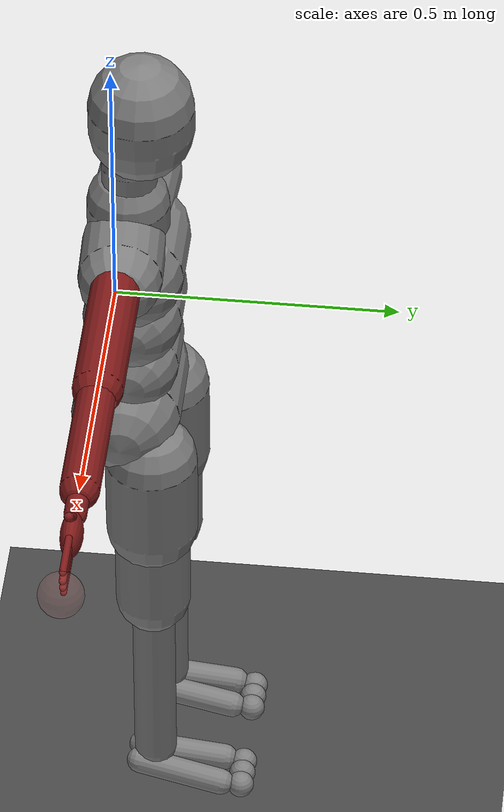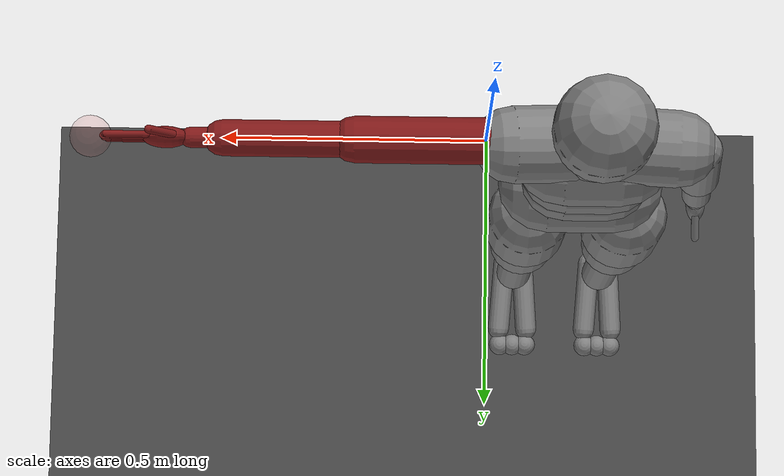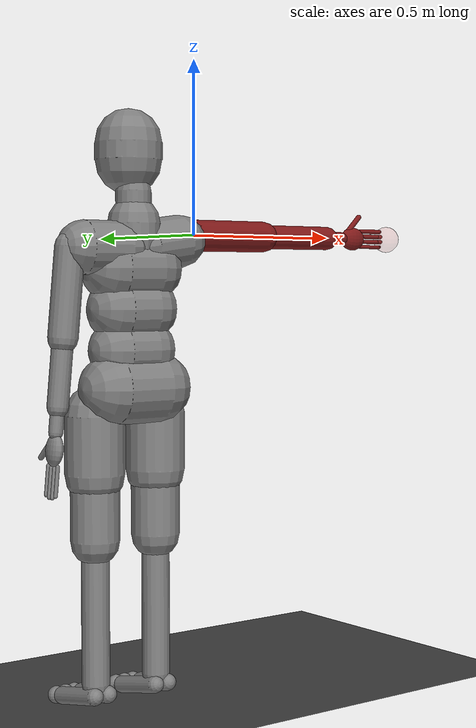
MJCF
<mujoco model="2-link arm joint torque control">
  <!-- Defining how equations of motions and constraints are solved -->
  <option timestep="0.005" iterations="50" solver="Newton" tolerance="1e-10"/>

  <default>
    <joint type="hinge" pos="0 0 0" axis="0 0 1" limited="true" range="-5 170" damping="0.1" stiffness="0" armature="0.001"/>
  </default>

  <!--
  This is where the physical elements will be defined.
  The worldbody is the root element, all other rigid bodies are its children.
  -->
  <worldbody>

    <!--
    This is a rigid body. It can have children bodies of its own nested inside.
    The child elements' position is defined in relation to this one's.
    -->
    <body name="upper arm" pos="0 0 0">

      <!--
      A "geom" defines a volume or surface that can't be penetrated by other geoms, and determines
      mass and inertia as well.
      -->
      <geom name="upper arm" mass="1" type="capsule" size="0.045" fromto="0 0 0  0.25 0 0" rgba=".5 .1 .1 1"/>

      <joint name="shoulder" range="-60 160"/>

      <body name="forearm" pos="0.25 0 0">
        <geom name="forearm" mass="2" type="capsule" size="0.035" fromto="0 0 0  0.25 0 0" rgba=".5 .1 .1 1"/>
        <joint name="elbow"/>
          <body  name="wrist_body" pos="0.25 0 0" euler="-90 0 90">
              <geom density="1000" type="capsule" size="0.02000001 0.03" pos="1.880135E-09 -0.03 -3.279598E-08" quat="4.003268E-08 -4.391836E-08 -0.7071071 -0.7071071" priority="0" contype="0" conaffinity="0" group="2" condim="1" solmix="1" solref="0.015 1" rgba=".5 .1 .1 1" solimp="0.99 0.99 0.003" margin="0" gap="0" friction="0.7 0.005 0.0001" name="rwrist" />
              <body pos="0 -0.09076759 0" quat="-1 0 0 0" name="hand">
                <!--
                TODO: Add a joint here! Experiment with which direction its axis="x y z" should point to
                -->
                <geom density="1000" type="ellipsoid" size="0.03500002 0.02000001 0.045" pos="3.469804E-09 -0.01675202 -3.877605E-08" quat="4.003268E-08 -4.391836E-08 -0.7071071 -0.7071071" priority="0" contype="0" conaffinity="0" group="2" rgba=".5 .1 .1 1" condim="3" solmix="1" solref="0.015 1" solimp="0.98 0.98 0.001" margin="0" gap="0" friction="1 0.005 0.0001" name="rhand" />
                <body name="tip" pos="0 -0.175 0"/>
                <body pos="-6.475558E-09 -0.06500006 1.90359E-08" quat="-1 0 0 0" name="rfingers">
                  <geom density="1000" type="capsule" size="0.006500002 0.04" pos="-0.02399999 -0.02500005 -4.555073E-08" quat="0.7071071 -0.7071071 4.391836E-08 4.003268E-08" priority="0" contype="0" conaffinity="0" group="2" condim="3" rgba=".5 .1 .1 1" solmix="1" solref="0.015 1" solimp="0.98 0.98 0.001" margin="0" gap="0" friction="1 0.005 0.0001" name="rfinger0" />
                  <geom density="1000" type="capsule" size="0.006500002 0.04" pos="-0.00799998 -0.02999995 -3.565628E-10" quat="0.7071071 -0.7071071 4.391836E-08 4.003268E-08" priority="0" contype="0" conaffinity="0" group="2" condim="3" rgba=".5 .1 .1 1" solmix="1" solref="0.015 1" solimp="0.98 0.98 0.001" margin="0" gap="0" friction="1 0.005 0.0001" name="rfinger1" />
                  <geom density="1000" type="capsule" size="0.006000001 0.04" pos="0.007999999 -0.03000007 -5.897357E-09" quat="0.7071071 -0.7071071 4.391836E-08 4.003268E-08" priority="0" contype="0" conaffinity="0" group="2" condim="3" rgba=".5 .1 .1 1" solmix="1" solref="0.015 1" solimp="0.98 0.98 0.001" margin="0" gap="0" friction="1 0.005 0.0001" name="rfinger2" />
                  <geom density="1000" type="capsule" size="0.005500001 0.04" pos="0.02400001 -0.02500007 3.095344E-08" quat="0.7071071 -0.7071071 4.391836E-08 4.003268E-08" priority="0" contype="0" conaffinity="0" group="2" condim="3" rgba=".5 .1 .1 1" solmix="1" solref="0.015 1" solimp="0.98 0.98 0.001" margin="0" gap="0" friction="1 0.005 0.0001" name="rfinger3" />
                </body>
                <body pos="-0.025 6.70552E-09 -8.940694E-09" quat="0.92388 -4.930634E-08 6.000214E-08 -0.382683" name="rthumb">
                  <geom density="1000" type="capsule" size="0.008000004 0.03" pos="2.888915E-08 -0.03000006 -2.920286E-08" quat="3.642271E-08 6.018672E-09 -0.707107 -0.707107" priority="0" contype="0" conaffinity="0" group="2" rgba=".5 .1 .1 1"  condim="3" solmix="1" solref="0.015 1" solimp="0.98 0.98 0.001" margin="0" gap="0" friction="1 0.005 0.0001" name="rthumb" />
                </body>
              </body>
          </body>

      </body>
    </body>

    <!-- These two elements are necessary for clearer visualisation of spatial relationships. -->
    <geom name="floor" pos="0 0 -1.35" size="0 0 1" type="plane" material="matplane"/>
    <light directional="true" diffuse=".8 .8 .8" specular=".2 .2 .2" pos="0 0 5" dir="0 0 -1"/>

    <body name="IK" mocap="true" pos="0.75 0 0">
        <geom type="sphere" size="0.04" contype="0" conaffinity="0" rgba="0.8 0.4 0.4 0.2"/>
    </body>
  </worldbody>

  <actuator>
    <motor name="data.ctrl[0]" joint="shoulder" ctrllimited="true" ctrlrange="-3 3" gear="0 0 0 0 0 0 "/>
    <motor name="data.ctrl[1]" joint="elbow" ctrllimited="true" ctrlrange="-3 3" gear="0 0 0 0 0 0 "/>
    <motor name="data.ctrl[2]" joint="shoulder" ctrllimited="true" ctrlrange="-3 3" gear="0 0 0 0 0 0 "/>
    <motor name="data.ctrl[3]" joint="elbow" ctrllimited="true" ctrlrange="-3 3" gear="0 0 0 0 0 0 "/>
    <!--
    TODO: Add an actuator for your new wrist joint
    -->
  </actuator>

  <!--
  Add humanoid model, for spatial reference.
  -->
  <include file="../xml/cmu_model.xml"/>

  <!--
  The elements below are for visuals only, defining textures and postprocessing.
  -->

  <equality>
    <connect body1="IK" body2="tip" anchor="0 0 0" active="false" name="target"/>
  </equality>

  <asset>
    <texture type="skybox" builtin="gradient" rgb1="0.6 0.6 0.6" rgb2="0 0 0" width="512" height="512"/>
    <texture name="texplane" type="2d" builtin="checker" rgb1=".25 .25 .25" rgb2=".3 .3 .3" width="512" height="512" mark="cross" markrgb=".8 .8 .8"/>
    <material name="matplane" reflectance="0.3" texture="texplane" texrepeat="1 1" texuniform="true"/>
  </asset>

  <visual>
    <rgba haze=".3 .3 .3 1"/>
  </visual>
</mujoco>

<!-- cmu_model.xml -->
<!--
This model is only used as a visual reference to illustrate a humanoid body in some of the xml files.
-->

<mujoco>
  <worldbody>
    <body pos="-0.2067787 -0.0002415101 0.1821983" quat="-8.659561E-17 0 0.7071068 0.7071068" mocap="true" name="Mocap_K_head_0" />
    <body pos="-0.208 -0.004 -0.3789999" quat="-8.659561E-17 0 0.7071068 0.7071068" mocap="true" name="Mocap_K_lowerback_1" />
    <body pos="0.5372286 0.00427828 0.00206387" quat="-0.7071068 -2.980232E-07 1.192093E-07 -0.7071068" mocap="true" name="Mocap_K_rhand_2" />
    <body pos="-0.2085659 -0.012053 -0.2657869" quat="-8.659561E-17 0 0.7071068 0.7071068" mocap="true" name="Mocap_K_upperback_3" />
    <body pos="-0.106063 0.04544622 -1.291445" quat="-6.123234E-17 6.123234E-17 0 1" mocap="true" name="Mocap_K_rfoot_4" />
    <body pos="-0.309937 0.04544622 -1.291445" quat="-6.123234E-17 6.123234E-17 0 1" mocap="true" name="Mocap_K_lfoot_5" />
    <body pos="-0.461662 0.004277938 -0.570159" quat="0.5230872 0.475794 -0.4757942 -0.5230867" mocap="true" name="Mocap_K_lhand_6" />
    <body pos="-0.2090784 -0.01111618 -0.1522268" quat="-8.659561E-17 0 0.7071068 0.7071068" mocap="true" name="Mocap_K_thorax_7" />
    <body pos="-0.208 -0.004 -0.3789999" quat="-1 0 0 0" mocap="true" name="Mocap_K_root_8" />
    <body pos="-0.208 -0.004 -0.379" quat="-1 0 0 0" name="K_root_9">
      <body pos="0 0 0" quat="0 0 0.7071068 0.7071068" name="K_lhipjoint_10">
        <geom density="10" type="capsule" size="0.008000004 0.02187361" pos="0.05096854 -0.04590372 0.02472301" quat="0.5708001 -0.5666021 -0.5942641 0" priority="0" contype="0" conaffinity="0" group="2" condim="1" solmix="1" solref="0.015 1" solimp="0.99 0.99 0.003" margin="0" gap="0" friction="0.7 0.005 0.0001" name="K_lhipjoint_15" />
        <body pos="0.1019371 -0.09180747 0.04944616" quat="-1 0 0 0" name="K_lfemur_16">

          <geom density="0" type="capsule" size="0.08500003 0.083" pos="0 -0.115473 3.61172E-08" quat="0.6963643 -0.6963643 -0.1227881 -0.1227881" priority="0" contype="0" conaffinity="0" group="2" condim="1" solmix="1" solref="0.015 1" solimp="0.99 0.99 0.003" margin="0" gap="0" friction="0.7 0.005 0.0001" name="K_lfemur_upper_23" />
          <geom density="1000" type="capsule" size="0.07000002 0.182226" pos="0 -0.202473 4.648841E-08" quat="0.6963643 -0.6963643 -0.1227881 -0.1227881" priority="0" contype="0" conaffinity="0" group="2" condim="1" solmix="1" solref="0.015 1" solimp="0.99 0.99 0.003" margin="0" gap="0" friction="0.7 0.005 0.0001" name="K_lfemur_24" />
          <body pos="0 -0.4049452 1.302296E-07" quat="-1 0 0 0" name="K_ltibia_25">

            <geom density="1000" type="capsule" size="0.04000001 0.182561" pos="0 -0.202846 2.418112E-08" quat="0.6963643 -0.6963643 -0.1227881 -0.1227881" priority="0" contype="0" conaffinity="0" group="2" condim="1" solmix="1" solref="0.015 1" solimp="0.99 0.99 0.003" margin="0" gap="0" friction="0.7 0.005 0.0001" name="K_ltibia_35" />
            <body pos="0 -0.415693 1.091591E-07" quat="0.7071069 -0.7071069 0 0" name="K_lfoot_36">

              <geom density="1000" type="capsule" size="0.02500003 0.08000004" pos="-0.02700002 -0.04999997 -0.01138783" quat="0.7672563 -0.6405111 0.02306491 -0.02306581" priority="0" contype="0" conaffinity="1" group="2" condim="3" solmix="1" solref="0.015 1" solimp="0.98 0.98 0.001" margin="0" gap="0" friction="1 0.005 0.0001" name="K_lfoot_47" />
              <geom density="1000" type="capsule" size="0.02500003 0.08000004" pos="0.02700002 -0.04999997 -0.01138783" quat="0.7288731 -0.5939951 -0.240743 -0.240743" priority="0" contype="0" conaffinity="1" group="2" condim="3" solmix="1" solref="0.015 1" solimp="0.98 0.98 0.001" margin="0" gap="0" friction="1 0.005 0.0001" name="K_lfoot_ch_48" />
              <body pos="0 -0.1563721 -0.02277565" quat="-1 0 0 0" name="K_ltoes_49">

                <geom density="1000" type="sphere" size="0.02500002" pos="0 -0.009999995 -0.00999999" quat="-1 0 0 0" priority="0" contype="0" conaffinity="1" group="2" condim="3" solmix="1" solref="0.015 1" solimp="0.98 0.98 0.001" margin="0" gap="0" friction="1 0.005 0.0001" name="K_ltoes0_67" />
                <geom density="1000" type="sphere" size="0.02500002" pos="0.03000002 -0.009999995 -0.00999999" quat="-1 0 0 0" priority="0" contype="0" conaffinity="1" group="2" condim="3" solmix="1" solref="0.015 1" solimp="0.98 0.98 0.001" margin="0" gap="0" friction="1 0.005 0.0001" name="K_ltoes1_68" />
                <geom density="1000" type="sphere" size="0.02500002" pos="-0.03000002 -0.009999995 -0.00999999" quat="-1 0 0 0" priority="0" contype="0" conaffinity="1" group="2" condim="3" solmix="1" solref="0.015 1" solimp="0.98 0.98 0.001" margin="0" gap="0" friction="1 0.005 0.0001" name="K_ltoes2_69" />
              </body>
            </body>
          </body>
        </body>
      </body>
      <body pos="0 0 0" quat="0 0 0.7071068 0.7071068" name="K_rhipjoint_11">
        <geom density="10" type="capsule" size="0.008000002 0.02187361" pos="-0.05096852 -0.04590372 0.02472301" quat="0.5748562 -0.5475942 0.6080142 0" priority="0" contype="0" conaffinity="0" group="2" condim="1" solmix="1" solref="0.015 1" solimp="0.99 0.99 0.003" margin="0" gap="0" friction="0.7 0.005 0.0001" name="K_rhipjoint_17" />
        <body pos="-0.1019371 -0.09180744 0.04944613" quat="-1 0 0 0" name="K_rfemur_18">

          <geom density="0" type="capsule" size="0.08500003 0.083" pos="0 -0.115473 3.61172E-08" quat="0.6963643 -0.6963643 0.1227881 0.1227881" priority="0" contype="0" conaffinity="0" group="2" condim="1" solmix="1" solref="0.015 1" solimp="0.99 0.99 0.003" margin="0" gap="0" friction="0.7 0.005 0.0001" name="K_rfemur_upper_27" />
          <geom density="1000" type="capsule" size="0.07000002 0.182226" pos="0 -0.2024731 4.648841E-08" quat="0.6963643 -0.6963643 0.1227881 0.1227881" priority="0" contype="0" conaffinity="0" group="2" condim="1" solmix="1" solref="0.015 1" solimp="0.99 0.99 0.003" margin="0" gap="0" friction="0.7 0.005 0.0001" name="K_rfemur_28" />
          <body pos="0 -0.4049451 1.004273E-07" quat="-1 0 0 0" name="K_rtibia_29">

            <geom density="1000" type="capsule" size="0.04000001 0.182561" pos="0 -0.2028461 2.418113E-08" quat="0.6963643 -0.6963643 0.1227881 0.1227881" priority="0" contype="0" conaffinity="0" group="2" condim="1" solmix="1" solref="0.015 1" solimp="0.99 0.99 0.003" margin="0" gap="0" friction="0.7 0.005 0.0001" name="K_rtibia_38" />
            <body pos="0 -0.4156931 1.091591E-07" quat="0.7071069 -0.7071069 0 0" name="K_rfoot_39">

              <geom density="1000" type="capsule" size="0.02500002 0.08000004" pos="-0.02700002 -0.05000003 -0.01138783" quat="0.7352074 -0.5863352 0.2405011 0.2405011" priority="0" contype="0" conaffinity="1" group="2" condim="3" solmix="1" solref="0.015 1" solimp="0.98 0.98 0.001" margin="0" gap="0" friction="1 0.005 0.0001" name="K_rfoot_52" />
              <geom density="1000" type="capsule" size="0.02500002 0.08000002" pos="0.02700003 -0.05000003 -0.01138783" quat="0.7731252 -0.6332311 -0.02545851 0.02545841" priority="0" contype="0" conaffinity="1" group="2" condim="3" solmix="1" solref="0.015 1" solimp="0.98 0.98 0.001" margin="0" gap="0" friction="1 0.005 0.0001" name="K_rfoot_ch_53" />
              <body pos="0 -0.1563721 -0.02277565" quat="-1 0 0 0" name="K_rtoes_54">

                <geom density="1000" type="sphere" size="0.02500002" pos="0 -0.009999995 -0.00999999" quat="-1 0 0 0" priority="0" contype="0" conaffinity="1" group="2" condim="3" solmix="1" solref="0.015 1" solimp="0.98 0.98 0.001" margin="0" gap="0" friction="1 0.005 0.0001" name="K_rtoes0_71" />
                <geom density="1000" type="sphere" size="0.02500002" pos="0.03000002 -0.009999995 -0.00999999" quat="-1 0 0 0" priority="0" contype="0" conaffinity="1" group="2" condim="3" solmix="1" solref="0.015 1" solimp="0.98 0.98 0.001" margin="0" gap="0" friction="1 0.005 0.0001" name="K_rtoes1_72" />
                <geom density="1000" type="sphere" size="0.02500002" pos="-0.03000001 -0.009999995 -0.00999999" quat="-1 0 0 0" priority="0" contype="0" conaffinity="1" group="2" condim="3" solmix="1" solref="0.015 1" solimp="0.98 0.98 0.001" margin="0" gap="0" friction="1 0.005 0.0001" name="K_rtoes2_73" />
              </body>
            </body>
          </body>
        </body>
      </body>
      <geom density="1000" type="capsule" size="0.1 0.07" pos="0 0 -0.05000001" quat="-0.5 -0.5 -0.5 -0.5" priority="0" contype="0" conaffinity="0" group="2" condim="1" solmix="1" solref="0.015 1" solimp="0.99 0.99 0.003" margin="0" gap="0" friction="0.7 0.005 0.0001" name="K_root_geom_13" />
      <body pos="0 0 0" quat="0 0 0.7071068 0.7071068" name="K_lowerback_14">

        <geom density="1000" type="capsule" size="0.08500004 0.04540022" pos="0.002829314 0.05660651 0.009999989" quat="0.7071069 0 0.7071069 0" priority="0" contype="0" conaffinity="0" group="2" condim="1" solmix="1" solref="0.015 1" solimp="0.99 0.99 0.003" margin="0" gap="0" friction="0.7 0.005 0.0001" name="K_lowerback_20" />
        <body pos="0.0005658568 0.113213 -0.008053012" quat="-1 0 0 0" name="K_upperback_21">
          <geom density="1000" type="capsule" size="0.09000005 0.04542623" pos="0.0002562702 0.05678022 0.02" quat="0.7071069 0 0.7071069 0" priority="0" contype="0" conaffinity="0" group="2" condim="1" solmix="1" solref="0.015 1" solimp="0.99 0.99 0.003" margin="0" gap="0" friction="0.7 0.005 0.0001" name="K_upperback_32" />
          <body pos="0.0005125405 0.11356 0.0009368002" quat="-1 0 0 0" name="K_thorax_33">

            <geom density="1000" type="capsule" size="0.09500004 0.05702063" pos="0 0.05697251 0.01999999" quat="0.7071069 0 0.7071069 0" priority="0" contype="0" conaffinity="0" group="2" condim="1" solmix="1" solref="0.015 1" solimp="0.99 0.99 0.003" margin="0" gap="0" friction="0.7 0.005 0.0001" name="K_thorax_41" />
            <body pos="0 0.113945 0.004680338" quat="-1 0 0 0" name="K_lowerneck_42">

              <geom density="500" type="capsule" size="0.07500006 0.02279232" pos="-0.001650721 0.04524014 0.005343582" quat="0.7071069 0.7071069 0 0" priority="0" contype="1" conaffinity="1" group="2" condim="1" solmix="1" solref="0.015 1" solimp="0.99 0.99 0.003" margin="0" gap="0" friction="0.7 0.005 0.0001" name="K_lowerneck_56" />
              <body pos="-0.003301442 0.09048013 0.01068716" quat="-1 0 0 0" name="K_upperneck_57">

                <geom density="500" type="capsule" size="0.05000004 0.02252722" pos="0.0005008728 0.04499561 -0.002246445" quat="0.7071069 0.7071069 0 0" priority="0" contype="1" conaffinity="1" group="2" condim="1" solmix="1" solref="0.015 1" solimp="0.99 0.99 0.003" margin="0" gap="0" friction="0.7 0.005 0.0001" name="K_upperneck_75" />
                <body pos="0.001001761 0.13 -0.004492865" quat="-1 0 0 0" name="K_head_76">

                  <geom density="800" type="capsule" size="0.09500007 0.02410402" pos="0.0003414602 0.04818398 0.02499997" quat="0.7071069 0.7071069 0 0" priority="0" contype="0" conaffinity="0" group="2" condim="1" solmix="1" solref="0.015 1" solimp="0.99 0.99 0.003" margin="0" gap="0" friction="0.7 0.005 0.0001" name="K_head_84" />
                </body>
              </body>
            </body>
            <body pos="0 0.113945 0.004680338" quat="-0.9810503 0 0 0.193754" name="K_lclavicle_43">
              <geom density="500" type="capsule" size="0.07500003 0.06000002" pos="0.09188176 0.03826361 0.005357058" quat="0.6879708 0.278988 -0.6699718 -8.640231E-10" priority="0" contype="1" conaffinity="1" group="2" condim="1" solmix="1" solref="0.015 1" solimp="0.99 0.99 0.003" margin="0" gap="0" friction="0.7 0.005 0.0001" name="K_lclavicle_60" />
              <body pos="0.1800001 0.09000004 0.01071411" quat="-0.2512589 -0.2317584 0.9377106 -0.06209913" name="K_lhumerus_61">

                <geom density="1000" type="capsule" size="0.042 0.124579" pos="-6.143738E-09 -0.138421 2.840297E-08" quat="0.6123726 -0.6123727 0.3535533 0.3535534" priority="0" contype="0" conaffinity="0" group="2" condim="1" solmix="1" solref="0.015 1" solimp="0.99 0.99 0.003" margin="0" gap="0" friction="0.7 0.005 0.0001" name="K_lhumerus_78" />
                <body pos="3.413431E-08 -0.2768431 4.919416E-08" quat="-1 0 0 0" name="K_lradius_79">

                  <geom density="1000" type="capsule" size="0.03 0.08169109" pos="6.397308E-09 -0.09076791 1.018815E-08" quat="0.6123726 -0.6123727 0.3535533 0.3535534" priority="0" contype="0" conaffinity="0" group="2" condim="1" solmix="1" solref="0.015 1" solimp="0.99 0.99 0.003" margin="0" gap="0" friction="0.7 0.005 0.0001" name="K_lradius_86" />
                  <body pos="-1.908565E-08 -0.1815361 1.970062E-09" quat="-0.5000004 -2.481983E-09 0.8660256 -7.237219E-09" name="K_lwrist_87">
                    <geom density="1000" type="capsule" size="0.02000001 0.03" pos="1.880135E-09 -0.03 -3.279598E-08" quat="4.003268E-08 -4.391836E-08 -0.7071071 -0.7071071" priority="0" contype="0" conaffinity="0" group="2" condim="1" solmix="1" solref="0.015 1" solimp="0.99 0.99 0.003" margin="0" gap="0" friction="0.7 0.005 0.0001" name="K_lwrist_91" />
                    <body pos="-9.784539E-09 -0.09076759 3.994287E-08" quat="-1 0 0 0" name="K_lhand_92">
                      <geom density="1000" type="ellipsoid" size="0.03500002 0.02000001 0.045" pos="3.469804E-09 -0.01675202 -3.877605E-08" quat="4.003268E-08 -4.391836E-08 -0.7071071 -0.7071071" priority="0" contype="0" conaffinity="0" group="2" condim="3" solmix="1" solref="0.015 1" solimp="0.98 0.98 0.001" margin="0" gap="0" friction="1 0.005 0.0001" name="K_lhand_95" />
                      <body pos="-6.475558E-09 -0.07500006 1.90359E-08" quat="-1 0 0 0" name="K_lfingers_96">
                        <geom density="1000" type="capsule" size="0.006500002 0.04" pos="-0.02399999 -0.02500005 -4.555073E-08" quat="0.7071071 -0.7071071 4.391836E-08 4.003268E-08" priority="0" contype="0" conaffinity="0" group="2" condim="3" solmix="1" solref="0.015 1" solimp="0.98 0.98 0.001" margin="0" gap="0" friction="1 0.005 0.0001" name="K_lfinger0_101" />
                        <geom density="1000" type="capsule" size="0.006500002 0.04" pos="-0.00799998 -0.02999995 -3.565628E-10" quat="0.7071071 -0.7071071 4.391836E-08 4.003268E-08" priority="0" contype="0" conaffinity="0" group="2" condim="3" solmix="1" solref="0.015 1" solimp="0.98 0.98 0.001" margin="0" gap="0" friction="1 0.005 0.0001" name="K_lfinger1_102" />
                        <geom density="1000" type="capsule" size="0.006000001 0.04" pos="0.007999999 -0.03000007 -5.897357E-09" quat="0.7071071 -0.7071071 4.391836E-08 4.003268E-08" priority="0" contype="0" conaffinity="0" group="2" condim="3" solmix="1" solref="0.015 1" solimp="0.98 0.98 0.001" margin="0" gap="0" friction="1 0.005 0.0001" name="K_lfinger2_103" />
                        <geom density="1000" type="capsule" size="0.005500001 0.04" pos="0.02400001 -0.02500007 3.095344E-08" quat="0.7071071 -0.7071071 4.391836E-08 4.003268E-08" priority="0" contype="0" conaffinity="0" group="2" condim="3" solmix="1" solref="0.015 1" solimp="0.98 0.98 0.001" margin="0" gap="0" friction="1 0.005 0.0001" name="K_lfinger3_104" />
                      </body>
                      <body pos="-0.025 6.70552E-09 -8.940694E-09" quat="0.92388 -4.930634E-08 6.000214E-08 -0.382683" name="K_lthumb_97">
                        <geom density="1000" type="capsule" size="0.008000004 0.03" pos="2.888915E-08 -0.03000006 -2.920286E-08" quat="3.642271E-08 6.018672E-09 -0.707107 -0.707107" priority="0" contype="0" conaffinity="0" group="2" condim="3" solmix="1" solref="0.015 1" solimp="0.98 0.98 0.001" margin="0" gap="0" friction="1 0.005 0.0001" name="K_lthumb_105" />
                      </body>
                    </body>
                  </body>
                </body>
              </body>
            </body>
            <body pos="0 0.113945 0.004680338" quat="-0.991445 0 0 -0.1305263" name="K_rclavicle_44">
              <geom density="500" type="capsule" size="0.07500002 0.06000001" pos="-0.09188176 0.03826362 0.005357056" quat="0.6879708 0.2789879 0.6699718 1.381872E-08" priority="0" contype="0" conaffinity="0" group="2" condim="1" solmix="1" solref="0.015 1" solimp="0.99 0.99 0.003" margin="0" gap="0" friction="0.7 0.005 0.0001" name="K_rclavicle_64" />
              <geom density="500" type="capsule" size="0.0300002 0.01000001" pos="-0.09188176 0.03826362 -0.025357056" quat="0.6879708 0.2789879 0.6699718 1.381872E-08" priority="0" contype="1" conaffinity="1" group="2" condim="1" solmix="1" solref="0.015 1" solimp="0.99 0.99 0.003" margin="0" gap="0" friction="0.7 0.005 0.0001" name="K_rclavicle_dummy" rgba="0 0 0 0"/>
            </body>
          </body>
        </body>
      </body>
    </body>
  </worldbody>
  <contact />
  <tendon />
  <equality>
    <weld body1="Mocap_K_head_0" body2="K_head_76" solref="0.02 1" solimp="0.9 0.95 0.001 0.5 2" name="weld_head_111" />
    <weld body1="Mocap_K_upperback_3" body2="K_upperback_21" solref="0.02 1" solimp="0.9 0.95 0.001 0.5 2" name="weld_upperback_113" />
    <weld body1="Mocap_K_lhand_6" body2="K_lhand_92" solref="0.02 1" solimp="0.9 0.95 0.001 0.5 2" name="weld_lhand_114" />
    <weld body1="Mocap_K_lowerback_1" body2="K_lowerback_14" solref="0.02 1" solimp="0.9 0.95 0.001 0.5 2" name="weld_lowerback_115" />
    <weld body1="Mocap_K_root_8" body2="K_root_9" solref="0.02 1" solimp="0.9 0.95 0.001 0.5 2" name="weld_root_116" />
    <weld body1="Mocap_K_thorax_7" body2="K_thorax_33" solref="0.02 1" solimp="0.9 0.95 0.001 0.5 2" name="weld_thorax_117" />
  </equality>
  <actuator />
  <sensor />
  <asset />
</mujoco>
